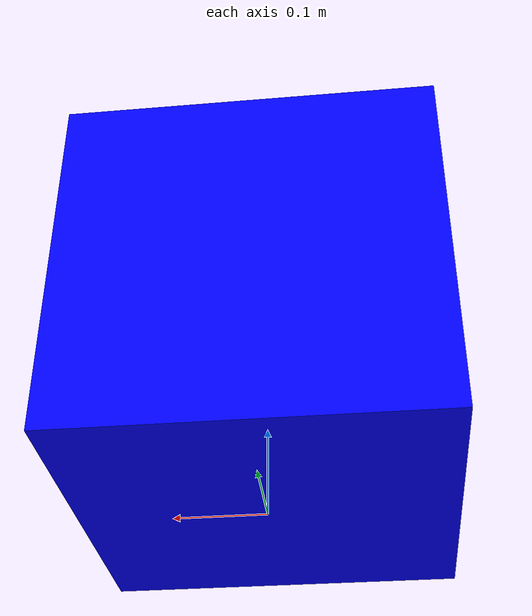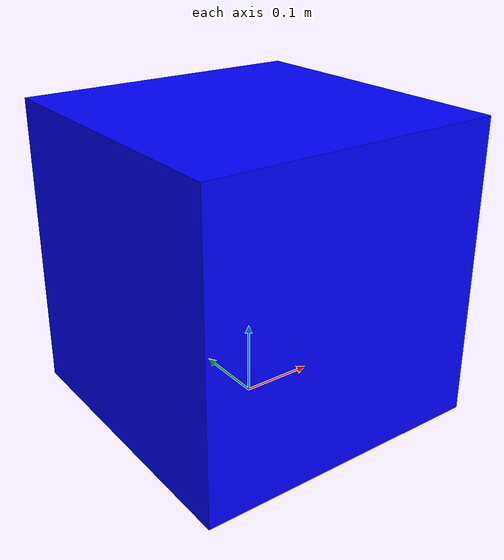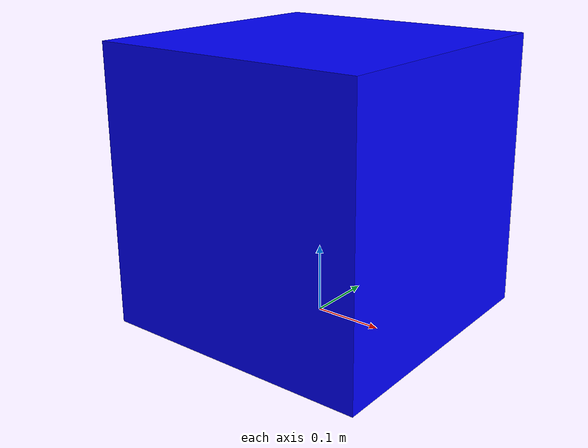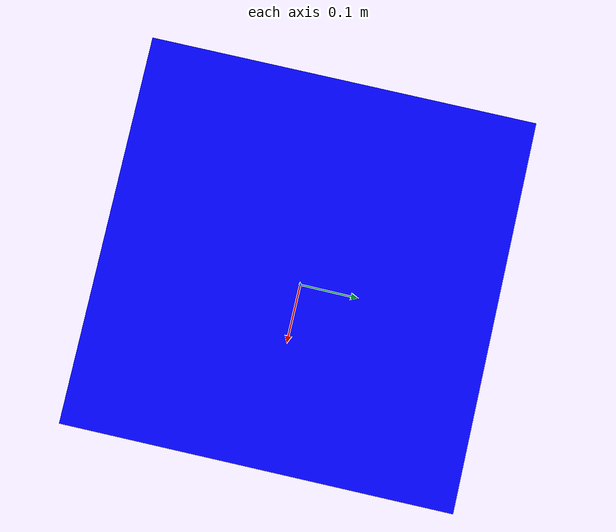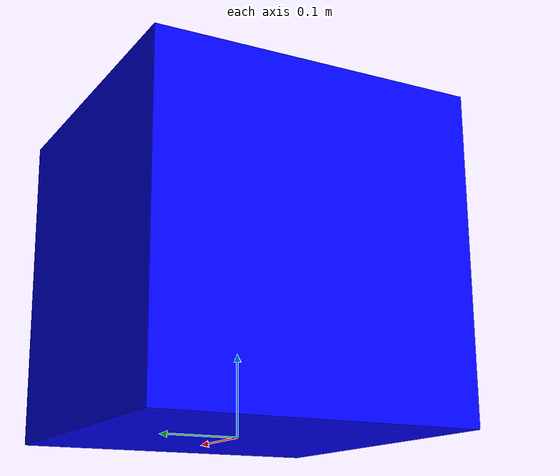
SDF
<?xml version="1.0" ?>
<sdf version="1.8">
<model name="load">
  <link name="box_body">
    <pose>0 0 0.2 0 0 0</pose>
      <inertial> <!--inertial properties of the link mass, inertia matix-->
        <mass>0.0001</mass>
        <inertia>
          <ixx>0.00000266</ixx>
          <ixy>0</ixy>
          <ixz>0</ixz>
          <iyy>0.00000266</iyy>
          <iyz>0</iyz>
          <izz>0.00000266</izz>
        </inertia>
      </inertial>
      <visual name='visual'>
        <geometry>
          <box>
            <size>0.4 0.4 0.4</size>
          </box>
        </geometry>
          <!--let's add color to our link-->
          <material>
            <ambient>0.0 0.0 1.0 1</ambient>
            <diffuse>0.0 0.0 1.0 1</diffuse>
            <specular>0.0 0.0 1.0 1</specular>
          </material>
      </visual>
      <collision name='collision'>
        <geometry>
          <box>
            <size>0.4 0.4 0.4</size>
          </box>
        </geometry>
      </collision>
    </link>
  <link name="top_center_hook">
    <pose>0 0 0.2 0 0 0</pose>
    <inertial>
      <mass>0.00001</mass>
        <inertia>
          <ixx>1e-9</ixx>
          <ixy>0</ixy>
          <ixz>0</ixz>
          <iyy>1e-9</iyy>
          <iyz>0</iyz>
          <izz>1e-9</izz>
        </inertia>
    </inertial>
    <visual name="hook_visual"><geometry><sphere><radius>0.005</radius></sphere></geometry></visual>
    <collision name="hook_collision"><geometry><sphere><radius>0.005</radius></sphere></geometry></collision>
  </link>
  <joint name="box_to_hook_joint" type="fixed">
    <parent>top_center_hook</parent>
    <child>box_body</child>
  </joint>

  <plugin
      filename="gz-sim-odometry-publisher-system"
      name="gz::sim::systems::OdometryPublisher">
      <odom_frame>odom</odom_frame>
      <dimensions>3</dimensions>
    </plugin>
</model>
</sdf>
